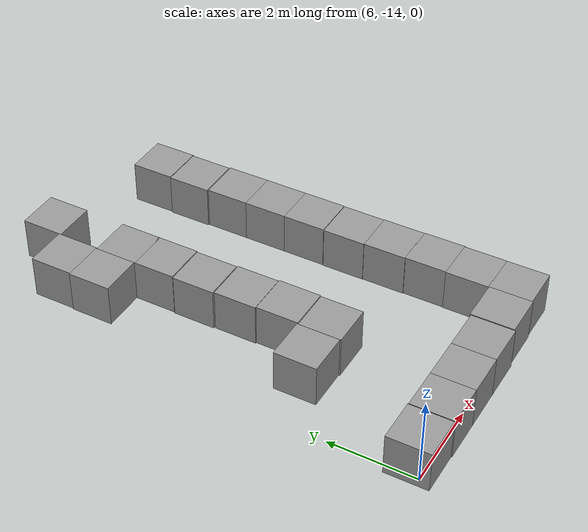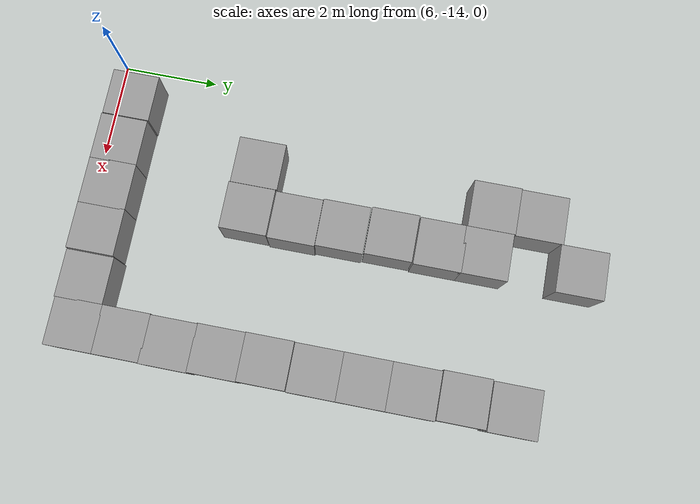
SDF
<sdf version="1.7">
 <model name="maze2.1">
  <link name="link_16">
   <inertial>
    <mass>1</mass>
    <inertia>
     <ixx>0.166667</ixx>
     <ixy>0</ixy>
     <ixz>0</ixz>
     <iyy>0.166667</iyy>
     <iyz>0</iyz>
     <izz>0.166667</izz>
    </inertia>
   </inertial>
   <pose>11.7552 -11.6234 0 0 -0 0</pose>
   <visual name="visual">
    <geometry><box><size>1 1 1</size></box></geometry>
    <material>
     <lighting>1</lighting>
     <script><uri>file://media/materials/scripts/gazebo.material</uri><name>Gazebo/Grey</name></script>
     <shader type="pixel"/>
    </material>
   </visual>
   <collision name="collision">
    <geometry><box><size>1 1 1</size></box></geometry>
    <surface>
     <friction>
      <ode><mu>1</mu><mu2>1</mu2><fdir1>0 0 0</fdir1><slip1>0</slip1><slip2>0</slip2></ode>
      <torsional>
       <coefficient>1</coefficient>
       <patch_radius>0</patch_radius>
       <surface_radius>0</surface_radius>
       <use_patch_radius>1</use_patch_radius>
       <ode><slip>0</slip></ode>
      </torsional>
     </friction>
     <bounce><restitution_coefficient>0</restitution_coefficient><threshold>1e+06</threshold></bounce>
     <contact>
      <collide_without_contact>0</collide_without_contact>
      <collide_without_contact_bitmask>1</collide_without_contact_bitmask>
      <collide_bitmask>1</collide_bitmask>
      <ode>
       <soft_cfm>0</soft_cfm>
       <soft_erp>0.2</soft_erp>
       <kp>1e+13</kp>
       <kd>1</kd>
       <max_vel>0.01</max_vel>
       <min_depth>0</min_depth>
      </ode>
      <bullet>
       <split_impulse>1</split_impulse>
       <split_impulse_penetration_threshold>-0.01</split_impulse_penetration_threshold>
       <soft_cfm>0</soft_cfm>
       <soft_erp>0.2</soft_erp>
       <kp>1e+13</kp>
       <kd>1</kd>
      </bullet>
     </contact>
    </surface>
   </collision>
  </link>
  <link name="link_17">
   <inertial>
    <mass>1</mass>
    <inertia>
     <ixx>0.166667</ixx>
     <ixy>0</ixy>
     <ixz>0</ixz>
     <iyy>0.166667</iyy>
     <iyz>0</iyz>
     <izz>0.166667</izz>
    </inertia>
   </inertial>
   <pose>11.7435 -12.5978 0 0 -0 0</pose>
   <visual name="visual">
    <geometry><box><size>1 1 1</size></box></geometry>
    <material>
     <lighting>1</lighting>
     <script><uri>file://media/materials/scripts/gazebo.material</uri><name>Gazebo/Grey</name></script>
     <shader type="pixel"/>
    </material>
   </visual>
   <collision name="collision">
    <geometry><box><size>1 1 1</size></box></geometry>
    <surface>
     <friction>
      <ode><mu>1</mu><mu2>1</mu2><fdir1>0 0 0</fdir1><slip1>0</slip1><slip2>0</slip2></ode>
      <torsional>
       <coefficient>1</coefficient>
       <patch_radius>0</patch_radius>
       <surface_radius>0</surface_radius>
       <use_patch_radius>1</use_patch_radius>
       <ode><slip>0</slip></ode>
      </torsional>
     </friction>
     <bounce><restitution_coefficient>0</restitution_coefficient><threshold>1e+06</threshold></bounce>
     <contact>
      <collide_without_contact>0</collide_without_contact>
      <collide_without_contact_bitmask>1</collide_without_contact_bitmask>
      <collide_bitmask>1</collide_bitmask>
      <ode>
       <soft_cfm>0</soft_cfm>
       <soft_erp>0.2</soft_erp>
       <kp>1e+13</kp>
       <kd>1</kd>
       <max_vel>0.01</max_vel>
       <min_depth>0</min_depth>
      </ode>
      <bullet>
       <split_impulse>1</split_impulse>
       <split_impulse_penetration_threshold>-0.01</split_impulse_penetration_threshold>
       <soft_cfm>0</soft_cfm>
       <soft_erp>0.2</soft_erp>
       <kp>1e+13</kp>
       <kd>1</kd>
      </bullet>
     </contact>
    </surface>
   </collision>
  </link>
  <link name="link_18">
   <inertial>
    <mass>1</mass>
    <inertia>
     <ixx>0.166667</ixx>
     <ixy>0</ixy>
     <ixz>0</ixz>
     <iyy>0.166667</iyy>
     <iyz>0</iyz>
     <izz>0.166667</izz>
    </inertia>
   </inertial>
   <pose>11.7435 -13.5836 0 0 -0 0</pose>
   <visual name="visual">
    <geometry><box><size>1 1 1</size></box></geometry>
    <material>
     <lighting>1</lighting>
     <script><uri>file://media/materials/scripts/gazebo.material</uri><name>Gazebo/Grey</name></script>
     <shader type="pixel"/>
    </material>
   </visual>
   <collision name="collision">
    <geometry><box><size>1 1 1</size></box></geometry>
    <surface>
     <friction>
      <ode><mu>1</mu><mu2>1</mu2><fdir1>0 0 0</fdir1><slip1>0</slip1><slip2>0</slip2></ode>
      <torsional>
       <coefficient>1</coefficient>
       <patch_radius>0</patch_radius>
       <surface_radius>0</surface_radius>
       <use_patch_radius>1</use_patch_radius>
       <ode><slip>0</slip></ode>
      </torsional>
     </friction>
     <bounce><restitution_coefficient>0</restitution_coefficient><threshold>1e+06</threshold></bounce>
     <contact>
      <collide_without_contact>0</collide_without_contact>
      <collide_without_contact_bitmask>1</collide_without_contact_bitmask>
      <collide_bitmask>1</collide_bitmask>
      <ode>
       <soft_cfm>0</soft_cfm>
       <soft_erp>0.2</soft_erp>
       <kp>1e+13</kp>
       <kd>1</kd>
       <max_vel>0.01</max_vel>
       <min_depth>0</min_depth>
      </ode>
      <bullet>
       <split_impulse>1</split_impulse>
       <split_impulse_penetration_threshold>-0.01</split_impulse_penetration_threshold>
       <soft_cfm>0</soft_cfm>
       <soft_erp>0.2</soft_erp>
       <kp>1e+13</kp>
       <kd>1</kd>
      </bullet>
     </contact>
    </surface>
   </collision>
  </link>
  <link name="link_19">
   <inertial>
    <mass>1</mass>
    <inertia>
     <ixx>0.166667</ixx>
     <ixy>0</ixy>
     <ixz>0</ixz>
     <iyy>0.166667</iyy>
     <iyz>0</iyz>
     <izz>0.166667</izz>
    </inertia>
   </inertial>
   <pose>10.7623 -13.604 0 0 -0 0</pose>
   <visual name="visual">
    <geometry><box><size>1 1 1</size></box></geometry>
    <material>
     <lighting>1</lighting>
     <script><uri>file://media/materials/scripts/gazebo.material</uri><name>Gazebo/Grey</name></script>
     <shader type="pixel"/>
    </material>
   </visual>
   <collision name="collision">
    <geometry><box><size>1 1 1</size></box></geometry>
    <surface>
     <friction>
      <ode><mu>1</mu><mu2>1</mu2><fdir1>0 0 0</fdir1><slip1>0</slip1><slip2>0</slip2></ode>
      <torsional>
       <coefficient>1</coefficient>
       <patch_radius>0</patch_radius>
       <surface_radius>0</surface_radius>
       <use_patch_radius>1</use_patch_radius>
       <ode><slip>0</slip></ode>
      </torsional>
     </friction>
     <bounce><restitution_coefficient>0</restitution_coefficient><threshold>1e+06</threshold></bounce>
     <contact>
      <collide_without_contact>0</collide_without_contact>
      <collide_without_contact_bitmask>1</collide_without_contact_bitmask>
      <collide_bitmask>1</collide_bitmask>
      <ode>
       <soft_cfm>0</soft_cfm>
       <soft_erp>0.2</soft_erp>
       <kp>1e+13</kp>
       <kd>1</kd>
       <max_vel>0.01</max_vel>
       <min_depth>0</min_depth>
      </ode>
      <bullet>
       <split_impulse>1</split_impulse>
       <split_impulse_penetration_threshold>-0.01</split_impulse_penetration_threshold>
       <soft_cfm>0</soft_cfm>
       <soft_erp>0.2</soft_erp>
       <kp>1e+13</kp>
       <kd>1</kd>
      </bullet>
     </contact>
    </surface>
   </collision>
  </link>
  <link name="link_1_clone_149">
   <inertial>
    <mass>1</mass>
    <inertia>
     <ixx>0.166667</ixx>
     <ixy>0</ixy>
     <ixz>0</ixz>
     <iyy>0.166667</iyy>
     <iyz>0</iyz>
     <izz>0.166667</izz>
    </inertia>
   </inertial>
   <pose>8.75288 -3.64799 0 0 -0 0</pose>
   <visual name="visual">
    <geometry><box><size>1 1 1</size></box></geometry>
    <material>
     <lighting>1</lighting>
     <script><uri>file://media/materials/scripts/gazebo.material</uri><name>Gazebo/Grey</name></script>
     <shader type="pixel"><normal_map>__default__</normal_map></shader>
     <ambient>0.3 0.3 0.3 1</ambient>
     <diffuse>0.7 0.7 0.7 1</diffuse>
     <specular>0.01 0.01 0.01 1</specular>
     <emissive>0 0 0 1</emissive>
    </material>
   </visual>
   <collision name="collision">
    <geometry><box><size>1 1 1</size></box></geometry>
    <surface>
     <friction>
      <ode><mu>1</mu><mu2>1</mu2><fdir1>0 0 0</fdir1><slip1>0</slip1><slip2>0</slip2></ode>
      <torsional>
       <coefficient>1</coefficient>
       <patch_radius>0</patch_radius>
       <surface_radius>0</surface_radius>
       <use_patch_radius>1</use_patch_radius>
       <ode><slip>0</slip></ode>
      </torsional>
     </friction>
     <bounce><restitution_coefficient>0</restitution_coefficient><threshold>1e+06</threshold></bounce>
     <contact>
      <collide_without_contact>0</collide_without_contact>
      <collide_without_contact_bitmask>1</collide_without_contact_bitmask>
      <collide_bitmask>1</collide_bitmask>
      <ode>
       <soft_cfm>0</soft_cfm>
       <soft_erp>0.2</soft_erp>
       <kp>1e+13</kp>
       <kd>1</kd>
       <max_vel>0.01</max_vel>
       <min_depth>0</min_depth>
      </ode>
      <bullet>
       <split_impulse>1</split_impulse>
       <split_impulse_penetration_threshold>-0.01</split_impulse_penetration_threshold>
       <soft_cfm>0</soft_cfm>
       <soft_erp>0.2</soft_erp>
       <kp>1e+13</kp>
       <kd>1</kd>
      </bullet>
     </contact>
    </surface>
   </collision>
  </link>
  <link name="link_1_clone_150">
   <inertial>
    <mass>1</mass>
    <inertia>
     <ixx>0.166667</ixx>
     <ixy>0</ixy>
     <ixz>0</ixz>
     <iyy>0.166667</iyy>
     <iyz>0</iyz>
     <izz>0.166667</izz>
    </inertia>
   </inertial>
   <pose>7.75278 -4.60264 0 0 -0 0</pose>
   <visual name="visual">
    <geometry><box><size>1 1 1</size></box></geometry>
    <material>
     <lighting>1</lighting>
     <script><uri>file://media/materials/scripts/gazebo.material</uri><name>Gazebo/Grey</name></script>
     <shader type="pixel"><normal_map>__default__</normal_map></shader>
     <ambient>0.3 0.3 0.3 1</ambient>
     <diffuse>0.7 0.7 0.7 1</diffuse>
     <specular>0.01 0.01 0.01 1</specular>
     <emissive>0 0 0 1</emissive>
    </material>
   </visual>
   <collision name="collision">
    <geometry><box><size>1 1 1</size></box></geometry>
    <surface>
     <friction>
      <ode><mu>1</mu><mu2>1</mu2><fdir1>0 0 0</fdir1><slip1>0</slip1><slip2>0</slip2></ode>
      <torsional>
       <coefficient>1</coefficient>
       <patch_radius>0</patch_radius>
       <surface_radius>0</surface_radius>
       <use_patch_radius>1</use_patch_radius>
       <ode><slip>0</slip></ode>
      </torsional>
     </friction>
     <bounce><restitution_coefficient>0</restitution_coefficient><threshold>1e+06</threshold></bounce>
     <contact>
      <collide_without_contact>0</collide_without_contact>
      <collide_without_contact_bitmask>1</collide_without_contact_bitmask>
      <collide_bitmask>1</collide_bitmask>
      <ode>
       <soft_cfm>0</soft_cfm>
       <soft_erp>0.2</soft_erp>
       <kp>1e+13</kp>
       <kd>1</kd>
       <max_vel>0.01</max_vel>
       <min_depth>0</min_depth>
      </ode>
      <bullet>
       <split_impulse>1</split_impulse>
       <split_impulse_penetration_threshold>-0.01</split_impulse_penetration_threshold>
       <soft_cfm>0</soft_cfm>
       <soft_erp>0.2</soft_erp>
       <kp>1e+13</kp>
       <kd>1</kd>
      </bullet>
     </contact>
    </surface>
   </collision>
  </link>
  <link name="link_1_clone_151">
   <inertial>
    <mass>1</mass>
    <inertia>
     <ixx>0.166667</ixx>
     <ixy>0</ixy>
     <ixz>0</ixz>
     <iyy>0.166667</iyy>
     <iyz>0</iyz>
     <izz>0.166667</izz>
    </inertia>
   </inertial>
   <pose>7.73013 -5.6026 0 0 -0 0</pose>
   <visual name="visual">
    <geometry><box><size>1 1 1</size></box></geometry>
    <material>
     <lighting>1</lighting>
     <script><uri>file://media/materials/scripts/gazebo.material</uri><name>Gazebo/Grey</name></script>
     <shader type="pixel"><normal_map>__default__</normal_map></shader>
     <ambient>0.3 0.3 0.3 1</ambient>
     <diffuse>0.7 0.7 0.7 1</diffuse>
     <specular>0.01 0.01 0.01 1</specular>
     <emissive>0 0 0 1</emissive>
    </material>
   </visual>
   <collision name="collision">
    <geometry><box><size>1 1 1</size></box></geometry>
    <surface>
     <friction>
      <ode><mu>1</mu><mu2>1</mu2><fdir1>0 0 0</fdir1><slip1>0</slip1><slip2>0</slip2></ode>
      <torsional>
       <coefficient>1</coefficient>
       <patch_radius>0</patch_radius>
       <surface_radius>0</surface_radius>
       <use_patch_radius>1</use_patch_radius>
       <ode><slip>0</slip></ode>
      </torsional>
     </friction>
     <bounce><restitution_coefficient>0</restitution_coefficient><threshold>1e+06</threshold></bounce>
     <contact>
      <collide_without_contact>0</collide_without_contact>
      <collide_without_contact_bitmask>1</collide_without_contact_bitmask>
      <collide_bitmask>1</collide_bitmask>
      <ode>
       <soft_cfm>0</soft_cfm>
       <soft_erp>0.2</soft_erp>
       <kp>1e+13</kp>
       <kd>1</kd>
       <max_vel>0.01</max_vel>
       <min_depth>0</min_depth>
      </ode>
      <bullet>
       <split_impulse>1</split_impulse>
       <split_impulse_penetration_threshold>-0.01</split_impulse_penetration_threshold>
       <soft_cfm>0</soft_cfm>
       <soft_erp>0.2</soft_erp>
       <kp>1e+13</kp>
       <kd>1</kd>
      </bullet>
     </contact>
    </surface>
   </collision>
  </link>
  <link name="link_1_clone_152">
   <inertial>
    <mass>1</mass>
    <inertia>
     <ixx>0.166667</ixx>
     <ixy>0</ixy>
     <ixz>0</ixz>
     <iyy>0.166667</iyy>
     <iyz>0</iyz>
     <izz>0.166667</izz>
    </inertia>
   </inertial>
   <pose>8.73024 -5.62571 0 0 -0 0</pose>
   <visual name="visual">
    <geometry><box><size>1 1 1</size></box></geometry>
    <material>
     <lighting>1</lighting>
     <script><uri>file://media/materials/scripts/gazebo.material</uri><name>Gazebo/Grey</name></script>
     <shader type="pixel"><normal_map>__default__</normal_map></shader>
     <ambient>0.3 0.3 0.3 1</ambient>
     <diffuse>0.7 0.7 0.7 1</diffuse>
     <specular>0.01 0.01 0.01 1</specular>
     <emissive>0 0 0 1</emissive>
    </material>
   </visual>
   <collision name="collision">
    <geometry><box><size>1 1 1</size></box></geometry>
    <surface>
     <friction>
      <ode><mu>1</mu><mu2>1</mu2><fdir1>0 0 0</fdir1><slip1>0</slip1><slip2>0</slip2></ode>
      <torsional>
       <coefficient>1</coefficient>
       <patch_radius>0</patch_radius>
       <surface_radius>0</surface_radius>
       <use_patch_radius>1</use_patch_radius>
       <ode><slip>0</slip></ode>
      </torsional>
     </friction>
     <bounce><restitution_coefficient>0</restitution_coefficient><threshold>1e+06</threshold></bounce>
     <contact>
      <collide_without_contact>0</collide_without_contact>
      <collide_without_contact_bitmask>1</collide_without_contact_bitmask>
      <collide_bitmask>1</collide_bitmask>
      <ode>
       <soft_cfm>0</soft_cfm>
       <soft_erp>0.2</soft_erp>
       <kp>1e+13</kp>
       <kd>1</kd>
       <max_vel>0.01</max_vel>
       <min_depth>0</min_depth>
      </ode>
      <bullet>
       <split_impulse>1</split_impulse>
       <split_impulse_penetration_threshold>-0.01</split_impulse_penetration_threshold>
       <soft_cfm>0</soft_cfm>
       <soft_erp>0.2</soft_erp>
       <kp>1e+13</kp>
       <kd>1</kd>
      </bullet>
     </contact>
    </surface>
   </collision>
  </link>
  <link name="link_1_clone_153">
   <inertial>
    <mass>1</mass>
    <inertia>
     <ixx>0.166667</ixx>
     <ixy>0</ixy>
     <ixz>0</ixz>
     <iyy>0.166667</iyy>
     <iyz>0</iyz>
     <izz>0.166667</izz>
    </inertia>
   </inertial>
   <pose>8.73024 -6.58006 0 0 -0 0</pose>
   <visual name="visual">
    <geometry><box><size>1 1 1</size></box></geometry>
    <material>
     <lighting>1</lighting>
     <script><uri>file://media/materials/scripts/gazebo.material</uri><name>Gazebo/Grey</name></script>
     <shader type="pixel"><normal_map>__default__</normal_map></shader>
     <ambient>0.3 0.3 0.3 1</ambient>
     <diffuse>0.7 0.7 0.7 1</diffuse>
     <specular>0.01 0.01 0.01 1</specular>
     <emissive>0 0 0 1</emissive>
    </material>
   </visual>
   <collision name="collision">
    <geometry><box><size>1 1 1</size></box></geometry>
    <surface>
     <friction>
      <ode><mu>1</mu><mu2>1</mu2><fdir1>0 0 0</fdir1><slip1>0</slip1><slip2>0</slip2></ode>
      <torsional>
       <coefficient>1</coefficient>
       <patch_radius>0</patch_radius>
       <surface_radius>0</surface_radius>
       <use_patch_radius>1</use_patch_radius>
       <ode><slip>0</slip></ode>
      </torsional>
     </friction>
     <bounce><restitution_coefficient>0</restitution_coefficient><threshold>1e+06</threshold></bounce>
     <contact>
      <collide_without_contact>0</collide_without_contact>
      <collide_without_contact_bitmask>1</collide_without_contact_bitmask>
      <collide_bitmask>1</collide_bitmask>
      <ode>
       <soft_cfm>0</soft_cfm>
       <soft_erp>0.2</soft_erp>
       <kp>1e+13</kp>
       <kd>1</kd>
       <max_vel>0.01</max_vel>
       <min_depth>0</min_depth>
      </ode>
      <bullet>
       <split_impulse>1</split_impulse>
       <split_impulse_penetration_threshold>-0.01</split_impulse_penetration_threshold>
       <soft_cfm>0</soft_cfm>
       <soft_erp>0.2</soft_erp>
       <kp>1e+13</kp>
       <kd>1</kd>
      </bullet>
     </contact>
    </surface>
   </collision>
  </link>
  <link name="link_1_clone_154">
   <inertial>
    <mass>1</mass>
    <inertia>
     <ixx>0.166667</ixx>
     <ixy>0</ixy>
     <ixz>0</ixz>
     <iyy>0.166667</iyy>
     <iyz>0</iyz>
     <izz>0.166667</izz>
    </inertia>
   </inertial>
   <pose>8.70717 -7.60271 0 0 -0 0</pose>
   <visual name="visual">
    <geometry><box><size>1 1 1</size></box></geometry>
    <material>
     <lighting>1</lighting>
     <script><uri>file://media/materials/scripts/gazebo.material</uri><name>Gazebo/Grey</name></script>
     <shader type="pixel"><normal_map>__default__</normal_map></shader>
     <ambient>0.3 0.3 0.3 1</ambient>
     <diffuse>0.7 0.7 0.7 1</diffuse>
     <specular>0.01 0.01 0.01 1</specular>
     <emissive>0 0 0 1</emissive>
    </material>
   </visual>
   <collision name="collision">
    <geometry><box><size>1 1 1</size></box></geometry>
    <surface>
     <friction>
      <ode><mu>1</mu><mu2>1</mu2><fdir1>0 0 0</fdir1><slip1>0</slip1><slip2>0</slip2></ode>
      <torsional>
       <coefficient>1</coefficient>
       <patch_radius>0</patch_radius>
       <surface_radius>0</surface_radius>
       <use_patch_radius>1</use_patch_radius>
       <ode><slip>0</slip></ode>
      </torsional>
     </friction>
     <bounce><restitution_coefficient>0</restitution_coefficient><threshold>1e+06</threshold></bounce>
     <contact>
      <collide_without_contact>0</collide_without_contact>
      <collide_without_contact_bitmask>1</collide_without_contact_bitmask>
      <collide_bitmask>1</collide_bitmask>
      <ode>
       <soft_cfm>0</soft_cfm>
       <soft_erp>0.2</soft_erp>
       <kp>1e+13</kp>
       <kd>1</kd>
       <max_vel>0.01</max_vel>
       <min_depth>0</min_depth>
      </ode>
      <bullet>
       <split_impulse>1</split_impulse>
       <split_impulse_penetration_threshold>-0.01</split_impulse_penetration_threshold>
       <soft_cfm>0</soft_cfm>
       <soft_erp>0.2</soft_erp>
       <kp>1e+13</kp>
       <kd>1</kd>
      </bullet>
     </contact>
    </surface>
   </collision>
  </link>
  <link name="link_1_clone_155">
   <inertial>
    <mass>1</mass>
    <inertia>
     <ixx>0.166667</ixx>
     <ixy>0</ixy>
     <ixz>0</ixz>
     <iyy>0.166667</iyy>
     <iyz>0</iyz>
     <izz>0.166667</izz>
    </inertia>
   </inertial>
   <pose>8.73024 -8.62535 0 0 -0 0</pose>
   <visual name="visual">
    <geometry><box><size>1 1 1</size></box></geometry>
    <material>
     <lighting>1</lighting>
     <script><uri>file://media/materials/scripts/gazebo.material</uri><name>Gazebo/Grey</name></script>
     <shader type="pixel"><normal_map>__default__</normal_map></shader>
     <ambient>0.3 0.3 0.3 1</ambient>
     <diffuse>0.7 0.7 0.7 1</diffuse>
     <specular>0.01 0.01 0.01 1</specular>
     <emissive>0 0 0 1</emissive>
    </material>
   </visual>
   <collision name="collision">
    <geometry><box><size>1 1 1</size></box></geometry>
    <surface>
     <friction>
      <ode><mu>1</mu><mu2>1</mu2><fdir1>0 0 0</fdir1><slip1>0</slip1><slip2>0</slip2></ode>
      <torsional>
       <coefficient>1</coefficient>
       <patch_radius>0</patch_radius>
       <surface_radius>0</surface_radius>
       <use_patch_radius>1</use_patch_radius>
       <ode><slip>0</slip></ode>
      </torsional>
     </friction>
     <bounce><restitution_coefficient>0</restitution_coefficient><threshold>1e+06</threshold></bounce>
     <contact>
      <collide_without_contact>0</collide_without_contact>
      <collide_without_contact_bitmask>1</collide_without_contact_bitmask>
      <collide_bitmask>1</collide_bitmask>
      <ode>
       <soft_cfm>0</soft_cfm>
       <soft_erp>0.2</soft_erp>
       <kp>1e+13</kp>
       <kd>1</kd>
       <max_vel>0.01</max_vel>
       <min_depth>0</min_depth>
      </ode>
      <bullet>
       <split_impulse>1</split_impulse>
       <split_impulse_penetration_threshold>-0.01</split_impulse_penetration_threshold>
       <soft_cfm>0</soft_cfm>
       <soft_erp>0.2</soft_erp>
       <kp>1e+13</kp>
       <kd>1</kd>
      </bullet>
     </contact>
    </surface>
   </collision>
  </link>
  <link name="link_1_clone_156">
   <inertial>
    <mass>1</mass>
    <inertia>
     <ixx>0.166667</ixx>
     <ixy>0</ixy>
     <ixz>0</ixz>
     <iyy>0.166667</iyy>
     <iyz>0</iyz>
     <izz>0.166667</izz>
    </inertia>
   </inertial>
   <pose>7.73118 -10.6242 0 0 -0 0</pose>
   <visual name="visual">
    <geometry><box><size>1 1 1</size></box></geometry>
    <material>
     <lighting>1</lighting>
     <script><uri>file://media/materials/scripts/gazebo.material</uri><name>Gazebo/Grey</name></script>
     <shader type="pixel"><normal_map>__default__</normal_map></shader>
     <ambient>0.3 0.3 0.3 1</ambient>
     <diffuse>0.7 0.7 0.7 1</diffuse>
     <specular>0.01 0.01 0.01 1</specular>
     <emissive>0 0 0 1</emissive>
    </material>
   </visual>
   <collision name="collision">
    <geometry><box><size>1 1 1</size></box></geometry>
    <surface>
     <friction>
      <ode><mu>1</mu><mu2>1</mu2><fdir1>0 0 0</fdir1><slip1>0</slip1><slip2>0</slip2></ode>
      <torsional>
       <coefficient>1</coefficient>
       <patch_radius>0</patch_radius>
       <surface_radius>0</surface_radius>
       <use_patch_radius>1</use_patch_radius>
       <ode><slip>0</slip></ode>
      </torsional>
     </friction>
     <bounce><restitution_coefficient>0</restitution_coefficient><threshold>1e+06</threshold></bounce>
     <contact>
      <collide_without_contact>0</collide_without_contact>
      <collide_without_contact_bitmask>1</collide_without_contact_bitmask>
      <collide_bitmask>1</collide_bitmask>
      <ode>
       <soft_cfm>0</soft_cfm>
       <soft_erp>0.2</soft_erp>
       <kp>1e+13</kp>
       <kd>1</kd>
       <max_vel>0.01</max_vel>
       <min_depth>0</min_depth>
      </ode>
      <bullet>
       <split_impulse>1</split_impulse>
       <split_impulse_penetration_threshold>-0.01</split_impulse_penetration_threshold>
       <soft_cfm>0</soft_cfm>
       <soft_erp>0.2</soft_erp>
       <kp>1e+13</kp>
       <kd>1</kd>
      </bullet>
     </contact>
    </surface>
   </collision>
  </link>
  <link name="link_1_clone_51">
   <inertial>
    <mass>1</mass>
    <inertia>
     <ixx>0.166667</ixx>
     <ixy>0</ixy>
     <ixz>0</ixz>
     <iyy>0.166667</iyy>
     <iyz>0</iyz>
     <izz>0.166667</izz>
    </inertia>
   </inertial>
   <pose>6.75382 -13.6206 0 0 -0 0</pose>
   <visual name="visual">
    <geometry><box><size>1 1 1</size></box></geometry>
    <material>
     <lighting>1</lighting>
     <script><uri>file://media/materials/scripts/gazebo.material</uri><name>Gazebo/Grey</name></script>
     <shader type="pixel"><normal_map>__default__</normal_map></shader>
     <ambient>0.3 0.3 0.3 1</ambient>
     <diffuse>0.7 0.7 0.7 1</diffuse>
     <specular>0.01 0.01 0.01 1</specular>
     <emissive>0 0 0 1</emissive>
    </material>
   </visual>
   <collision name="collision">
    <geometry><box><size>1 1 1</size></box></geometry>
    <surface>
     <friction>
      <ode><mu>1</mu><mu2>1</mu2><fdir1>0 0 0</fdir1><slip1>0</slip1><slip2>0</slip2></ode>
      <torsional>
       <coefficient>1</coefficient>
       <patch_radius>0</patch_radius>
       <surface_radius>0</surface_radius>
       <use_patch_radius>1</use_patch_radius>
       <ode><slip>0</slip></ode>
      </torsional>
     </friction>
     <bounce><restitution_coefficient>0</restitution_coefficient><threshold>1e+06</threshold></bounce>
     <contact>
      <collide_without_contact>0</collide_without_contact>
      <collide_without_contact_bitmask>1</collide_without_contact_bitmask>
      <collide_bitmask>1</collide_bitmask>
      <ode>
       <soft_cfm>0</soft_cfm>
       <soft_erp>0.2</soft_erp>
       <kp>1e+13</kp>
       <kd>1</kd>
       <max_vel>0.01</max_vel>
       <min_depth>0</min_depth>
      </ode>
      <bullet>
       <split_impulse>1</split_impulse>
       <split_impulse_penetration_threshold>-0.01</split_impulse_penetration_threshold>
       <soft_cfm>0</soft_cfm>
       <soft_erp>0.2</soft_erp>
       <kp>1e+13</kp>
       <kd>1</kd>
      </bullet>
     </contact>
    </surface>
   </collision>
  </link>
  <link name="link_1_clone_52">
   <inertial>
    <mass>1</mass>
    <inertia>
     <ixx>0.166667</ixx>
     <ixy>0</ixy>
     <ixz>0</ixz>
     <iyy>0.166667</iyy>
     <iyz>0</iyz>
     <izz>0.166667</izz>
    </inertia>
   </inertial>
   <pose>7.76913 -13.6359 0 0 -0 0</pose>
   <visual name="visual">
    <geometry><box><size>1 1 1</size></box></geometry>
    <material>
     <lighting>1</lighting>
     <script><uri>file://media/materials/scripts/gazebo.material</uri><name>Gazebo/Grey</name></script>
     <shader type="pixel"><normal_map>__default__</normal_map></shader>
     <ambient>0.3 0.3 0.3 1</ambient>
     <diffuse>0.7 0.7 0.7 1</diffuse>
     <specular>0.01 0.01 0.01 1</specular>
     <emissive>0 0 0 1</emissive>
    </material>
   </visual>
   <collision name="collision">
    <geometry><box><size>1 1 1</size></box></geometry>
    <surface>
     <friction>
      <ode><mu>1</mu><mu2>1</mu2><fdir1>0 0 0</fdir1><slip1>0</slip1><slip2>0</slip2></ode>
      <torsional>
       <coefficient>1</coefficient>
       <patch_radius>0</patch_radius>
       <surface_radius>0</surface_radius>
       <use_patch_radius>1</use_patch_radius>
       <ode><slip>0</slip></ode>
      </torsional>
     </friction>
     <bounce><restitution_coefficient>0</restitution_coefficient><threshold>1e+06</threshold></bounce>
     <contact>
      <collide_without_contact>0</collide_without_contact>
      <collide_without_contact_bitmask>1</collide_without_contact_bitmask>
      <collide_bitmask>1</collide_bitmask>
      <ode>
       <soft_cfm>0</soft_cfm>
       <soft_erp>0.2</soft_erp>
       <kp>1e+13</kp>
       <kd>1</kd>
       <max_vel>0.01</max_vel>
       <min_depth>0</min_depth>
      </ode>
      <bullet>
       <split_impulse>1</split_impulse>
       <split_impulse_penetration_threshold>-0.01</split_impulse_penetration_threshold>
       <soft_cfm>0</soft_cfm>
       <soft_erp>0.2</soft_erp>
       <kp>1e+13</kp>
       <kd>1</kd>
      </bullet>
     </contact>
    </surface>
   </collision>
  </link>
  <link name="link_1_clone_53">
   <inertial>
    <mass>1</mass>
    <inertia>
     <ixx>0.166667</ixx>
     <ixy>0</ixy>
     <ixz>0</ixz>
     <iyy>0.166667</iyy>
     <iyz>0</iyz>
     <izz>0.166667</izz>
    </inertia>
   </inertial>
   <pose>8.75382 -13.6361 0 0 -0 0</pose>
   <visual name="visual">
    <geometry><box><size>1 1 1</size></box></geometry>
    <material>
     <lighting>1</lighting>
     <script><uri>file://media/materials/scripts/gazebo.material</uri><name>Gazebo/Grey</name></script>
     <shader type="pixel"><normal_map>__default__</normal_map></shader>
     <ambient>0.3 0.3 0.3 1</ambient>
     <diffuse>0.7 0.7 0.7 1</diffuse>
     <specular>0.01 0.01 0.01 1</specular>
     <emissive>0 0 0 1</emissive>
    </material>
   </visual>
   <collision name="collision">
    <geometry><box><size>1 1 1</size></box></geometry>
    <surface>
     <friction>
      <ode><mu>1</mu><mu2>1</mu2><fdir1>0 0 0</fdir1><slip1>0</slip1><slip2>0</slip2></ode>
      <torsional>
       <coefficient>1</coefficient>
       <patch_radius>0</patch_radius>
       <surface_radius>0</surface_radius>
       <use_patch_radius>1</use_patch_radius>
       <ode><slip>0</slip></ode>
      </torsional>
     </friction>
     <bounce><restitution_coefficient>0</restitution_coefficient><threshold>1e+06</threshold></bounce>
     <contact>
      <collide_without_contact>0</collide_without_contact>
      <collide_without_contact_bitmask>1</collide_without_contact_bitmask>
      <collide_bitmask>1</collide_bitmask>
      <ode>
       <soft_cfm>0</soft_cfm>
       <soft_erp>0.2</soft_erp>
       <kp>1e+13</kp>
       <kd>1</kd>
       <max_vel>0.01</max_vel>
       <min_depth>0</min_depth>
      </ode>
      <bullet>
       <split_impulse>1</split_impulse>
       <split_impulse_penetration_threshold>-0.01</split_impulse_penetration_threshold>
       <soft_cfm>0</soft_cfm>
       <soft_erp>0.2</soft_erp>
       <kp>1e+13</kp>
       <kd>1</kd>
      </bullet>
     </contact>
    </surface>
   </collision>
  </link>
  <link name="link_1_clone_54">
   <inertial>
    <mass>1</mass>
    <inertia>
     <ixx>0.166667</ixx>
     <ixy>0</ixy>
     <ixz>0</ixz>
     <iyy>0.166667</iyy>
     <iyz>0</iyz>
     <izz>0.166667</izz>
    </inertia>
   </inertial>
   <pose>9.73858 -13.636 0 0 -0 0</pose>
   <visual name="visual">
    <geometry><box><size>1 1 1</size></box></geometry>
    <material>
     <lighting>1</lighting>
     <script><uri>file://media/materials/scripts/gazebo.material</uri><name>Gazebo/Grey</name></script>
     <shader type="pixel"><normal_map>__default__</normal_map></shader>
     <ambient>0.3 0.3 0.3 1</ambient>
     <diffuse>0.7 0.7 0.7 1</diffuse>
     <specular>0.01 0.01 0.01 1</specular>
     <emissive>0 0 0 1</emissive>
    </material>
   </visual>
   <collision name="collision">
    <geometry><box><size>1 1 1</size></box></geometry>
    <surface>
     <friction>
      <ode><mu>1</mu><mu2>1</mu2><fdir1>0 0 0</fdir1><slip1>0</slip1><slip2>0</slip2></ode>
      <torsional>
       <coefficient>1</coefficient>
       <patch_radius>0</patch_radius>
       <surface_radius>0</surface_radius>
       <use_patch_radius>1</use_patch_radius>
       <ode><slip>0</slip></ode>
      </torsional>
     </friction>
     <bounce><restitution_coefficient>0</restitution_coefficient><threshold>1e+06</threshold></bounce>
     <contact>
      <collide_without_contact>0</collide_without_contact>
      <collide_without_contact_bitmask>1</collide_without_contact_bitmask>
      <collide_bitmask>1</collide_bitmask>
      <ode>
       <soft_cfm>0</soft_cfm>
       <soft_erp>0.2</soft_erp>
       <kp>1e+13</kp>
       <kd>1</kd>
       <max_vel>0.01</max_vel>
       <min_depth>0</min_depth>
      </ode>
      <bullet>
       <split_impulse>1</split_impulse>
       <split_impulse_penetration_threshold>-0.01</split_impulse_penetration_threshold>
       <soft_cfm>0</soft_cfm>
       <soft_erp>0.2</soft_erp>
       <kp>1e+13</kp>
       <kd>1</kd>
      </bullet>
     </contact>
    </surface>
   </collision>
  </link>
  <link name="link_1_clone_55">
   <inertial>
    <mass>1</mass>
    <inertia>
     <ixx>0.166667</ixx>
     <ixy>0</ixy>
     <ixz>0</ixz>
     <iyy>0.166667</iyy>
     <iyz>0</iyz>
     <izz>0.166667</izz>
    </inertia>
   </inertial>
   <pose>11.7418 -10.6373 0 0 -0 0</pose>
   <visual name="visual">
    <geometry><box><size>1 1 1</size></box></geometry>
    <material>
     <lighting>1</lighting>
     <script><uri>file://media/materials/scripts/gazebo.material</uri><name>Gazebo/Grey</name></script>
     <shader type="pixel"><normal_map>__default__</normal_map></shader>
     <ambient>0.3 0.3 0.3 1</ambient>
     <diffuse>0.7 0.7 0.7 1</diffuse>
     <specular>0.01 0.01 0.01 1</specular>
     <emissive>0 0 0 1</emissive>
    </material>
   </visual>
   <collision name="collision">
    <geometry><box><size>1 1 1</size></box></geometry>
    <surface>
     <friction>
      <ode><mu>1</mu><mu2>1</mu2><fdir1>0 0 0</fdir1><slip1>0</slip1><slip2>0</slip2></ode>
      <torsional>
       <coefficient>1</coefficient>
       <patch_radius>0</patch_radius>
       <surface_radius>0</surface_radius>
       <use_patch_radius>1</use_patch_radius>
       <ode><slip>0</slip></ode>
      </torsional>
     </friction>
     <bounce><restitution_coefficient>0</restitution_coefficient><threshold>1e+06</threshold></bounce>
     <contact>
      <collide_without_contact>0</collide_without_contact>
      <collide_without_contact_bitmask>1</collide_without_contact_bitmask>
      <collide_bitmask>1</collide_bitmask>
      <ode>
       <soft_cfm>0</soft_cfm>
       <soft_erp>0.2</soft_erp>
       <kp>1e+13</kp>
       <kd>1</kd>
       <max_vel>0.01</max_vel>
       <min_depth>0</min_depth>
      </ode>
      <bullet>
       <split_impulse>1</split_impulse>
       <split_impulse_penetration_threshold>-0.01</split_impulse_penetration_threshold>
       <soft_cfm>0</soft_cfm>
       <soft_erp>0.2</soft_erp>
       <kp>1e+13</kp>
       <kd>1</kd>
      </bullet>
     </contact>
    </surface>
   </collision>
  </link>
  <link name="link_1_clone_56">
   <inertial>
    <mass>1</mass>
    <inertia>
     <ixx>0.166667</ixx>
     <ixy>0</ixy>
     <ixz>0</ixz>
     <iyy>0.166667</iyy>
     <iyz>0</iyz>
     <izz>0.166667</izz>
    </inertia>
   </inertial>
   <pose>11.7326 -9.63786 0 0 -0 0</pose>
   <visual name="visual">
    <geometry><box><size>1 1 1</size></box></geometry>
    <material>
     <lighting>1</lighting>
     <script><uri>file://media/materials/scripts/gazebo.material</uri><name>Gazebo/Grey</name></script>
     <shader type="pixel"><normal_map>__default__</normal_map></shader>
     <ambient>0.3 0.3 0.3 1</ambient>
     <diffuse>0.7 0.7 0.7 1</diffuse>
     <specular>0.01 0.01 0.01 1</specular>
     <emissive>0 0 0 1</emissive>
    </material>
   </visual>
   <collision name="collision">
    <geometry><box><size>1 1 1</size></box></geometry>
    <surface>
     <friction>
      <ode><mu>1</mu><mu2>1</mu2><fdir1>0 0 0</fdir1><slip1>0</slip1><slip2>0</slip2></ode>
      <torsional>
       <coefficient>1</coefficient>
       <patch_radius>0</patch_radius>
       <surface_radius>0</surface_radius>
       <use_patch_radius>1</use_patch_radius>
       <ode><slip>0</slip></ode>
      </torsional>
     </friction>
     <bounce><restitution_coefficient>0</restitution_coefficient><threshold>1e+06</threshold></bounce>
     <contact>
      <collide_without_contact>0</collide_without_contact>
      <collide_without_contact_bitmask>1</collide_without_contact_bitmask>
      <collide_bitmask>1</collide_bitmask>
      <ode>
       <soft_cfm>0</soft_cfm>
       <soft_erp>0.2</soft_erp>
       <kp>1e+13</kp>
       <kd>1</kd>
       <max_vel>0.01</max_vel>
       <min_depth>0</min_depth>
      </ode>
      <bullet>
       <split_impulse>1</split_impulse>
       <split_impulse_penetration_threshold>-0.01</split_impulse_penetration_threshold>
       <soft_cfm>0</soft_cfm>
       <soft_erp>0.2</soft_erp>
       <kp>1e+13</kp>
       <kd>1</kd>
      </bullet>
     </contact>
    </surface>
   </collision>
  </link>
  <link name="link_1_clone_57">
   <inertial>
    <mass>1</mass>
    <inertia>
     <ixx>0.166667</ixx>
     <ixy>0</ixy>
     <ixz>0</ixz>
     <iyy>0.166667</iyy>
     <iyz>0</iyz>
     <izz>0.166667</izz>
    </inertia>
   </inertial>
   <pose>11.745 -8.62535 0 0 -0 0</pose>
   <visual name="visual">
    <geometry><box><size>1 1 1</size></box></geometry>
    <material>
     <lighting>1</lighting>
     <script><uri>file://media/materials/scripts/gazebo.material</uri><name>Gazebo/Grey</name></script>
     <shader type="pixel"><normal_map>__default__</normal_map></shader>
     <ambient>0.3 0.3 0.3 1</ambient>
     <diffuse>0.7 0.7 0.7 1</diffuse>
     <specular>0.01 0.01 0.01 1</specular>
     <emissive>0 0 0 1</emissive>
    </material>
   </visual>
   <collision name="collision">
    <geometry><box><size>1 1 1</size></box></geometry>
    <surface>
     <friction>
      <ode><mu>1</mu><mu2>1</mu2><fdir1>0 0 0</fdir1><slip1>0</slip1><slip2>0</slip2></ode>
      <torsional>
       <coefficient>1</coefficient>
       <patch_radius>0</patch_radius>
       <surface_radius>0</surface_radius>
       <use_patch_radius>1</use_patch_radius>
       <ode><slip>0</slip></ode>
      </torsional>
     </friction>
     <bounce><restitution_coefficient>0</restitution_coefficient><threshold>1e+06</threshold></bounce>
     <contact>
      <collide_without_contact>0</collide_without_contact>
      <collide_without_contact_bitmask>1</collide_without_contact_bitmask>
      <collide_bitmask>1</collide_bitmask>
      <ode>
       <soft_cfm>0</soft_cfm>
       <soft_erp>0.2</soft_erp>
       <kp>1e+13</kp>
       <kd>1</kd>
       <max_vel>0.01</max_vel>
       <min_depth>0</min_depth>
      </ode>
      <bullet>
       <split_impulse>1</split_impulse>
       <split_impulse_penetration_threshold>-0.01</split_impulse_penetration_threshold>
       <soft_cfm>0</soft_cfm>
       <soft_erp>0.2</soft_erp>
       <kp>1e+13</kp>
       <kd>1</kd>
      </bullet>
     </contact>
    </surface>
   </collision>
  </link>
  <link name="link_1_clone_58">
   <inertial>
    <mass>1</mass>
    <inertia>
     <ixx>0.166667</ixx>
     <ixy>0</ixy>
     <ixz>0</ixz>
     <iyy>0.166667</iyy>
     <iyz>0</iyz>
     <izz>0.166667</izz>
    </inertia>
   </inertial>
   <pose>11.7449 -7.62535 0 0 -0 0</pose>
   <visual name="visual">
    <geometry><box><size>1 1 1</size></box></geometry>
    <material>
     <lighting>1</lighting>
     <script><uri>file://media/materials/scripts/gazebo.material</uri><name>Gazebo/Grey</name></script>
     <shader type="pixel"><normal_map>__default__</normal_map></shader>
     <ambient>0.3 0.3 0.3 1</ambient>
     <diffuse>0.7 0.7 0.7 1</diffuse>
     <specular>0.01 0.01 0.01 1</specular>
     <emissive>0 0 0 1</emissive>
    </material>
   </visual>
   <collision name="collision">
    <geometry><box><size>1 1 1</size></box></geometry>
    <surface>
     <friction>
      <ode><mu>1</mu><mu2>1</mu2><fdir1>0 0 0</fdir1><slip1>0</slip1><slip2>0</slip2></ode>
      <torsional>
       <coefficient>1</coefficient>
       <patch_radius>0</patch_radius>
       <surface_radius>0</surface_radius>
       <use_patch_radius>1</use_patch_radius>
       <ode><slip>0</slip></ode>
      </torsional>
     </friction>
     <bounce><restitution_coefficient>0</restitution_coefficient><threshold>1e+06</threshold></bounce>
     <contact>
      <collide_without_contact>0</collide_without_contact>
      <collide_without_contact_bitmask>1</collide_without_contact_bitmask>
      <collide_bitmask>1</collide_bitmask>
      <ode>
       <soft_cfm>0</soft_cfm>
       <soft_erp>0.2</soft_erp>
       <kp>1e+13</kp>
       <kd>1</kd>
       <max_vel>0.01</max_vel>
       <min_depth>0</min_depth>
      </ode>
      <bullet>
       <split_impulse>1</split_impulse>
       <split_impulse_penetration_threshold>-0.01</split_impulse_penetration_threshold>
       <soft_cfm>0</soft_cfm>
       <soft_erp>0.2</soft_erp>
       <kp>1e+13</kp>
       <kd>1</kd>
      </bullet>
     </contact>
    </surface>
   </collision>
  </link>
  <link name="link_1_clone_59">
   <inertial>
    <mass>1</mass>
    <inertia>
     <ixx>0.166667</ixx>
     <ixy>0</ixy>
     <ixz>0</ixz>
     <iyy>0.166667</iyy>
     <iyz>0</iyz>
     <izz>0.166667</izz>
    </inertia>
   </inertial>
   <pose>11.745 -6.62535 0 0 -0 0</pose>
   <visual name="visual">
    <geometry><box><size>1 1 1</size></box></geometry>
    <material>
     <lighting>1</lighting>
     <script><uri>file://media/materials/scripts/gazebo.material</uri><name>Gazebo/Grey</name></script>
     <shader type="pixel"><normal_map>__default__</normal_map></shader>
     <ambient>0.3 0.3 0.3 1</ambient>
     <diffuse>0.7 0.7 0.7 1</diffuse>
     <specular>0.01 0.01 0.01 1</specular>
     <emissive>0 0 0 1</emissive>
    </material>
   </visual>
   <collision name="collision">
    <geometry><box><size>1 1 1</size></box></geometry>
    <surface>
     <friction>
      <ode><mu>1</mu><mu2>1</mu2><fdir1>0 0 0</fdir1><slip1>0</slip1><slip2>0</slip2></ode>
      <torsional>
       <coefficient>1</coefficient>
       <patch_radius>0</patch_radius>
       <surface_radius>0</surface_radius>
       <use_patch_radius>1</use_patch_radius>
       <ode><slip>0</slip></ode>
      </torsional>
     </friction>
     <bounce><restitution_coefficient>0</restitution_coefficient><threshold>1e+06</threshold></bounce>
     <contact>
      <collide_without_contact>0</collide_without_contact>
      <collide_without_contact_bitmask>1</collide_without_contact_bitmask>
      <collide_bitmask>1</collide_bitmask>
      <ode>
       <soft_cfm>0</soft_cfm>
       <soft_erp>0.2</soft_erp>
       <kp>1e+13</kp>
       <kd>1</kd>
       <max_vel>0.01</max_vel>
       <min_depth>0</min_depth>
      </ode>
      <bullet>
       <split_impulse>1</split_impulse>
       <split_impulse_penetration_threshold>-0.01</split_impulse_penetration_threshold>
       <soft_cfm>0</soft_cfm>
       <soft_erp>0.2</soft_erp>
       <kp>1e+13</kp>
       <kd>1</kd>
      </bullet>
     </contact>
    </surface>
   </collision>
  </link>
  <link name="link_1_clone_60">
   <inertial>
    <mass>1</mass>
    <inertia>
     <ixx>0.166667</ixx>
     <ixy>0</ixy>
     <ixz>0</ixz>
     <iyy>0.166667</iyy>
     <iyz>0</iyz>
     <izz>0.166667</izz>
    </inertia>
   </inertial>
   <pose>11.7196 -5.61278 0 0 -0 0</pose>
   <visual name="visual">
    <geometry><box><size>1 1 1</size></box></geometry>
    <material>
     <lighting>1</lighting>
     <script><uri>file://media/materials/scripts/gazebo.material</uri><name>Gazebo/Grey</name></script>
     <shader type="pixel"><normal_map>__default__</normal_map></shader>
     <ambient>0.3 0.3 0.3 1</ambient>
     <diffuse>0.7 0.7 0.7 1</diffuse>
     <specular>0.01 0.01 0.01 1</specular>
     <emissive>0 0 0 1</emissive>
    </material>
   </visual>
   <collision name="collision">
    <geometry><box><size>1 1 1</size></box></geometry>
    <surface>
     <friction>
      <ode><mu>1</mu><mu2>1</mu2><fdir1>0 0 0</fdir1><slip1>0</slip1><slip2>0</slip2></ode>
      <torsional>
       <coefficient>1</coefficient>
       <patch_radius>0</patch_radius>
       <surface_radius>0</surface_radius>
       <use_patch_radius>1</use_patch_radius>
       <ode><slip>0</slip></ode>
      </torsional>
     </friction>
     <bounce><restitution_coefficient>0</restitution_coefficient><threshold>1e+06</threshold></bounce>
     <contact>
      <collide_without_contact>0</collide_without_contact>
      <collide_without_contact_bitmask>1</collide_without_contact_bitmask>
      <collide_bitmask>1</collide_bitmask>
      <ode>
       <soft_cfm>0</soft_cfm>
       <soft_erp>0.2</soft_erp>
       <kp>1e+13</kp>
       <kd>1</kd>
       <max_vel>0.01</max_vel>
       <min_depth>0</min_depth>
      </ode>
      <bullet>
       <split_impulse>1</split_impulse>
       <split_impulse_penetration_threshold>-0.01</split_impulse_penetration_threshold>
       <soft_cfm>0</soft_cfm>
       <soft_erp>0.2</soft_erp>
       <kp>1e+13</kp>
       <kd>1</kd>
      </bullet>
     </contact>
    </surface>
   </collision>
  </link>
  <link name="link_1_clone_61">
   <inertial>
    <mass>1</mass>
    <inertia>
     <ixx>0.166667</ixx>
     <ixy>0</ixy>
     <ixz>0</ixz>
     <iyy>0.166667</iyy>
     <iyz>0</iyz>
     <izz>0.166667</izz>
    </inertia>
   </inertial>
   <pose>11.7449 -4.60014 0 0 -0 0</pose>
   <visual name="visual">
    <geometry><box><size>1 1 1</size></box></geometry>
    <material>
     <lighting>1</lighting>
     <script><uri>file://media/materials/scripts/gazebo.material</uri><name>Gazebo/Grey</name></script>
     <shader type="pixel"><normal_map>__default__</normal_map></shader>
     <ambient>0.3 0.3 0.3 1</ambient>
     <diffuse>0.7 0.7 0.7 1</diffuse>
     <specular>0.01 0.01 0.01 1</specular>
     <emissive>0 0 0 1</emissive>
    </material>
   </visual>
   <collision name="collision">
    <geometry><box><size>1 1 1</size></box></geometry>
    <surface>
     <friction>
      <ode><mu>1</mu><mu2>1</mu2><fdir1>0 0 0</fdir1><slip1>0</slip1><slip2>0</slip2></ode>
      <torsional>
       <coefficient>1</coefficient>
       <patch_radius>0</patch_radius>
       <surface_radius>0</surface_radius>
       <use_patch_radius>1</use_patch_radius>
       <ode><slip>0</slip></ode>
      </torsional>
     </friction>
     <bounce><restitution_coefficient>0</restitution_coefficient><threshold>1e+06</threshold></bounce>
     <contact>
      <collide_without_contact>0</collide_without_contact>
      <collide_without_contact_bitmask>1</collide_without_contact_bitmask>
      <collide_bitmask>1</collide_bitmask>
      <ode>
       <soft_cfm>0</soft_cfm>
       <soft_erp>0.2</soft_erp>
       <kp>1e+13</kp>
       <kd>1</kd>
       <max_vel>0.01</max_vel>
       <min_depth>0</min_depth>
      </ode>
      <bullet>
       <split_impulse>1</split_impulse>
       <split_impulse_penetration_threshold>-0.01</split_impulse_penetration_threshold>
       <soft_cfm>0</soft_cfm>
       <soft_erp>0.2</soft_erp>
       <kp>1e+13</kp>
       <kd>1</kd>
      </bullet>
     </contact>
    </surface>
   </collision>
  </link>
  <link name="link_4">
   <inertial>
    <mass>1</mass>
    <inertia>
     <ixx>0.166667</ixx>
     <ixy>0</ixy>
     <ixz>0</ixz>
     <iyy>0.166667</iyy>
     <iyz>0</iyz>
     <izz>0.166667</izz>
    </inertia>
   </inertial>
   <pose>8.73353 -10.651 0 0 -0 0</pose>
   <visual name="visual">
    <geometry><box><size>1 1 1</size></box></geometry>
    <material>
     <lighting>1</lighting>
     <script><uri>file://media/materials/scripts/gazebo.material</uri><name>Gazebo/Grey</name></script>
     <shader type="pixel"/>
    </material>
   </visual>
   <collision name="collision">
    <geometry><box><size>1 1 1</size></box></geometry>
    <surface>
     <friction>
      <ode><mu>1</mu><mu2>1</mu2><fdir1>0 0 0</fdir1><slip1>0</slip1><slip2>0</slip2></ode>
      <torsional>
       <coefficient>1</coefficient>
       <patch_radius>0</patch_radius>
       <surface_radius>0</surface_radius>
       <use_patch_radius>1</use_patch_radius>
       <ode><slip>0</slip></ode>
      </torsional>
     </friction>
     <bounce><restitution_coefficient>0</restitution_coefficient><threshold>1e+06</threshold></bounce>
     <contact>
      <collide_without_contact>0</collide_without_contact>
      <collide_without_contact_bitmask>1</collide_without_contact_bitmask>
      <collide_bitmask>1</collide_bitmask>
      <ode>
       <soft_cfm>0</soft_cfm>
       <soft_erp>0.2</soft_erp>
       <kp>1e+13</kp>
       <kd>1</kd>
       <max_vel>0.01</max_vel>
       <min_depth>0</min_depth>
      </ode>
      <bullet>
       <split_impulse>1</split_impulse>
       <split_impulse_penetration_threshold>-0.01</split_impulse_penetration_threshold>
       <soft_cfm>0</soft_cfm>
       <soft_erp>0.2</soft_erp>
       <kp>1e+13</kp>
       <kd>1</kd>
      </bullet>
     </contact>
    </surface>
   </collision>
  </link>
  <link name="link_5">
   <inertial>
    <mass>1</mass>
    <inertia>
     <ixx>0.166667</ixx>
     <ixy>0</ixy>
     <ixz>0</ixz>
     <iyy>0.166667</iyy>
     <iyz>0</iyz>
     <izz>0.166667</izz>
    </inertia>
   </inertial>
   <pose>8.75678 -9.63022 0 0 -0 0</pose>
   <visual name="visual">
    <geometry><box><size>1 1 1</size></box></geometry>
    <material>
     <lighting>1</lighting>
     <script><uri>file://media/materials/scripts/gazebo.material</uri><name>Gazebo/Grey</name></script>
     <shader type="pixel"/>
    </material>
   </visual>
   <collision name="collision">
    <geometry><box><size>1 1 1</size></box></geometry>
    <surface>
     <friction>
      <ode><mu>1</mu><mu2>1</mu2><fdir1>0 0 0</fdir1><slip1>0</slip1><slip2>0</slip2></ode>
      <torsional>
       <coefficient>1</coefficient>
       <patch_radius>0</patch_radius>
       <surface_radius>0</surface_radius>
       <use_patch_radius>1</use_patch_radius>
       <ode><slip>0</slip></ode>
      </torsional>
     </friction>
     <bounce><restitution_coefficient>0</restitution_coefficient><threshold>1e+06</threshold></bounce>
     <contact>
      <collide_without_contact>0</collide_without_contact>
      <collide_without_contact_bitmask>1</collide_without_contact_bitmask>
      <collide_bitmask>1</collide_bitmask>
      <ode>
       <soft_cfm>0</soft_cfm>
       <soft_erp>0.2</soft_erp>
       <kp>1e+13</kp>
       <kd>1</kd>
       <max_vel>0.01</max_vel>
       <min_depth>0</min_depth>
      </ode>
      <bullet>
       <split_impulse>1</split_impulse>
       <split_impulse_penetration_threshold>-0.01</split_impulse_penetration_threshold>
       <soft_cfm>0</soft_cfm>
       <soft_erp>0.2</soft_erp>
       <kp>1e+13</kp>
       <kd>1</kd>
      </bullet>
     </contact>
    </surface>
   </collision>
  </link>
  <static>0</static>
 </model>
</sdf>
